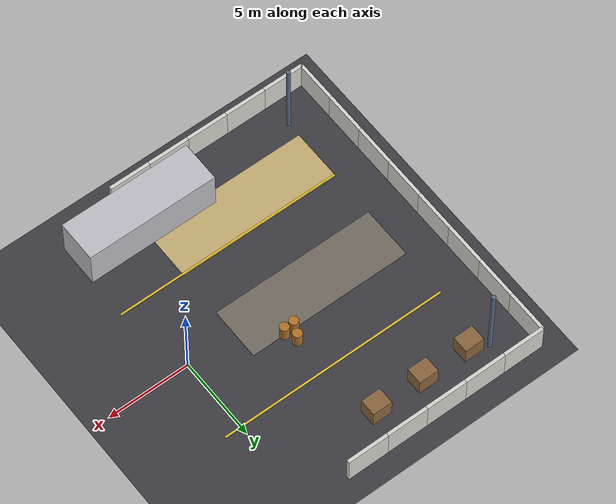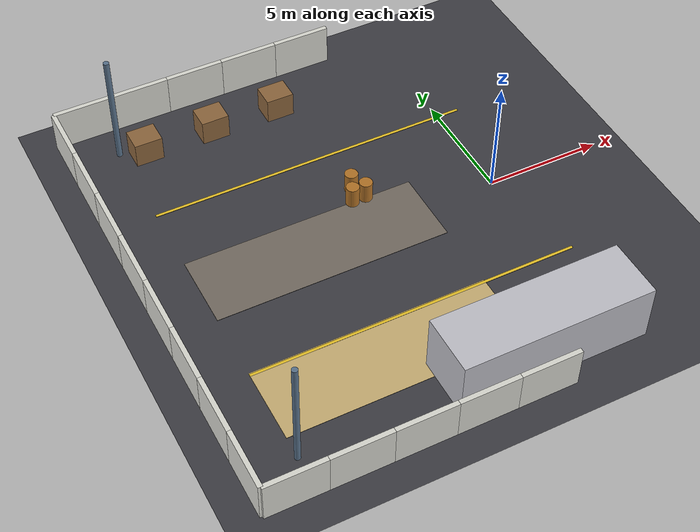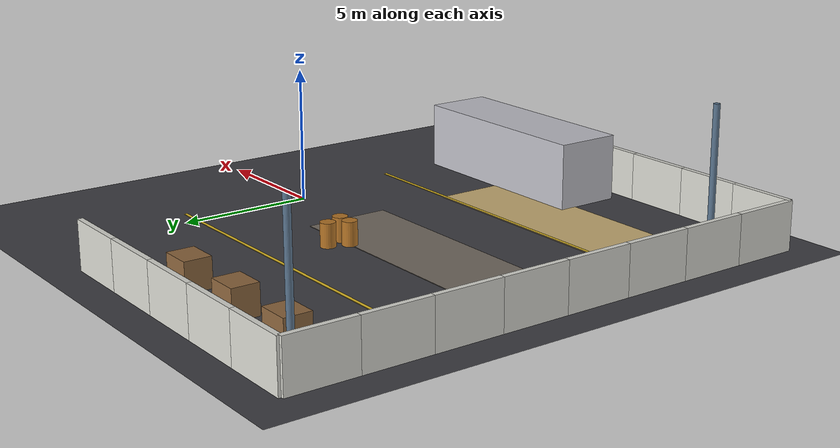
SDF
<sdf version="1.9">
 <world name="default">
  <model name="ground_plane">
   <static>true</static>
   <link name="link">
    <collision name="collision">
     <geometry><plane><normal>0 0 1</normal><size>200 200</size></plane></geometry>
     <surface><friction><ode><mu>0.9</mu><mu2>0.9</mu2></ode></friction></surface>
    </collision>
    <visual name="visual">
     <geometry><plane><normal>0 0 1</normal><size>200 200</size></plane></geometry>
     <material>
      <ambient>0.120 0.120 0.130 1</ambient>
      <diffuse>0.240 0.240 0.260 1</diffuse>
      <specular>0.05 0.05 0.05 1</specular>
      <pbr>
       <metal>
        <albedo_map>materials/textures/asphalt.png</albedo_map>
        <metalness>0.0</metalness>
        <roughness>0.9</roughness>
       </metal>
      </pbr>
     </material>
    </visual>
   </link>
  </model>
  <model name="wall_west_0">
   <static>true</static>
   <pose>-15.10000 -8.83750 0.90000 0 0.000000 0</pose>
   <link name="link">
    <collision name="collision">
     <geometry><box><size>0.20000 2.52500 1.80000</size></box></geometry>
     <surface><friction><ode><mu>1.0</mu><mu2>1.0</mu2></ode></friction></surface>
    </collision>
    <visual name="visual">
     <geometry><box><size>0.20000 2.52500 1.80000</size></box></geometry>
     <material>
      <ambient>0.425 0.425 0.410 1</ambient>
      <diffuse>0.850 0.850 0.820 1</diffuse>
      <specular>0.1 0.1 0.1 1</specular>
      <pbr>
       <metal>
        <albedo_map>materials/textures/painted_wall.png</albedo_map>
        <metalness>0.0</metalness>
        <roughness>0.85</roughness>
       </metal>
      </pbr>
     </material>
    </visual>
   </link>
  </model>
  <model name="wall_west_1">
   <static>true</static>
   <pose>-15.10000 -6.31250 0.90000 0 0.000000 0</pose>
   <link name="link">
    <collision name="collision">
     <geometry><box><size>0.20000 2.52500 1.80000</size></box></geometry>
     <surface><friction><ode><mu>1.0</mu><mu2>1.0</mu2></ode></friction></surface>
    </collision>
    <visual name="visual">
     <geometry><box><size>0.20000 2.52500 1.80000</size></box></geometry>
     <material>
      <ambient>0.425 0.425 0.410 1</ambient>
      <diffuse>0.850 0.850 0.820 1</diffuse>
      <specular>0.1 0.1 0.1 1</specular>
      <pbr>
       <metal>
        <albedo_map>materials/textures/painted_wall.png</albedo_map>
        <metalness>0.0</metalness>
        <roughness>0.85</roughness>
       </metal>
      </pbr>
     </material>
    </visual>
   </link>
  </model>
  <model name="wall_west_2">
   <static>true</static>
   <pose>-15.10000 -3.78750 0.90000 0 0.000000 0</pose>
   <link name="link">
    <collision name="collision">
     <geometry><box><size>0.20000 2.52500 1.80000</size></box></geometry>
     <surface><friction><ode><mu>1.0</mu><mu2>1.0</mu2></ode></friction></surface>
    </collision>
    <visual name="visual">
     <geometry><box><size>0.20000 2.52500 1.80000</size></box></geometry>
     <material>
      <ambient>0.425 0.425 0.410 1</ambient>
      <diffuse>0.850 0.850 0.820 1</diffuse>
      <specular>0.1 0.1 0.1 1</specular>
      <pbr>
       <metal>
        <albedo_map>materials/textures/painted_wall.png</albedo_map>
        <metalness>0.0</metalness>
        <roughness>0.85</roughness>
       </metal>
      </pbr>
     </material>
    </visual>
   </link>
  </model>
  <model name="wall_west_3">
   <static>true</static>
   <pose>-15.10000 -1.26250 0.90000 0 0.000000 0</pose>
   <link name="link">
    <collision name="collision">
     <geometry><box><size>0.20000 2.52500 1.80000</size></box></geometry>
     <surface><friction><ode><mu>1.0</mu><mu2>1.0</mu2></ode></friction></surface>
    </collision>
    <visual name="visual">
     <geometry><box><size>0.20000 2.52500 1.80000</size></box></geometry>
     <material>
      <ambient>0.425 0.425 0.410 1</ambient>
      <diffuse>0.850 0.850 0.820 1</diffuse>
      <specular>0.1 0.1 0.1 1</specular>
      <pbr>
       <metal>
        <albedo_map>materials/textures/painted_wall.png</albedo_map>
        <metalness>0.0</metalness>
        <roughness>0.85</roughness>
       </metal>
      </pbr>
     </material>
    </visual>
   </link>
  </model>
  <model name="wall_west_4">
   <static>true</static>
   <pose>-15.10000 1.26250 0.90000 0 0.000000 0</pose>
   <link name="link">
    <collision name="collision">
     <geometry><box><size>0.20000 2.52500 1.80000</size></box></geometry>
     <surface><friction><ode><mu>1.0</mu><mu2>1.0</mu2></ode></friction></surface>
    </collision>
    <visual name="visual">
     <geometry><box><size>0.20000 2.52500 1.80000</size></box></geometry>
     <material>
      <ambient>0.425 0.425 0.410 1</ambient>
      <diffuse>0.850 0.850 0.820 1</diffuse>
      <specular>0.1 0.1 0.1 1</specular>
      <pbr>
       <metal>
        <albedo_map>materials/textures/painted_wall.png</albedo_map>
        <metalness>0.0</metalness>
        <roughness>0.85</roughness>
       </metal>
      </pbr>
     </material>
    </visual>
   </link>
  </model>
  <model name="wall_west_5">
   <static>true</static>
   <pose>-15.10000 3.78750 0.90000 0 0.000000 0</pose>
   <link name="link">
    <collision name="collision">
     <geometry><box><size>0.20000 2.52500 1.80000</size></box></geometry>
     <surface><friction><ode><mu>1.0</mu><mu2>1.0</mu2></ode></friction></surface>
    </collision>
    <visual name="visual">
     <geometry><box><size>0.20000 2.52500 1.80000</size></box></geometry>
     <material>
      <ambient>0.425 0.425 0.410 1</ambient>
      <diffuse>0.850 0.850 0.820 1</diffuse>
      <specular>0.1 0.1 0.1 1</specular>
      <pbr>
       <metal>
        <albedo_map>materials/textures/painted_wall.png</albedo_map>
        <metalness>0.0</metalness>
        <roughness>0.85</roughness>
       </metal>
      </pbr>
     </material>
    </visual>
   </link>
  </model>
  <model name="wall_west_6">
   <static>true</static>
   <pose>-15.10000 6.31250 0.90000 0 0.000000 0</pose>
   <link name="link">
    <collision name="collision">
     <geometry><box><size>0.20000 2.52500 1.80000</size></box></geometry>
     <surface><friction><ode><mu>1.0</mu><mu2>1.0</mu2></ode></friction></surface>
    </collision>
    <visual name="visual">
     <geometry><box><size>0.20000 2.52500 1.80000</size></box></geometry>
     <material>
      <ambient>0.425 0.425 0.410 1</ambient>
      <diffuse>0.850 0.850 0.820 1</diffuse>
      <specular>0.1 0.1 0.1 1</specular>
      <pbr>
       <metal>
        <albedo_map>materials/textures/painted_wall.png</albedo_map>
        <metalness>0.0</metalness>
        <roughness>0.85</roughness>
       </metal>
      </pbr>
     </material>
    </visual>
   </link>
  </model>
  <model name="wall_west_7">
   <static>true</static>
   <pose>-15.10000 8.83750 0.90000 0 0.000000 0</pose>
   <link name="link">
    <collision name="collision">
     <geometry><box><size>0.20000 2.52500 1.80000</size></box></geometry>
     <surface><friction><ode><mu>1.0</mu><mu2>1.0</mu2></ode></friction></surface>
    </collision>
    <visual name="visual">
     <geometry><box><size>0.20000 2.52500 1.80000</size></box></geometry>
     <material>
      <ambient>0.425 0.425 0.410 1</ambient>
      <diffuse>0.850 0.850 0.820 1</diffuse>
      <specular>0.1 0.1 0.1 1</specular>
      <pbr>
       <metal>
        <albedo_map>materials/textures/painted_wall.png</albedo_map>
        <metalness>0.0</metalness>
        <roughness>0.85</roughness>
       </metal>
      </pbr>
     </material>
    </visual>
   </link>
  </model>
  <model name="wall_north_0">
   <static>true</static>
   <pose>-13.84167 10.10000 0.90000 0 0.000000 0</pose>
   <link name="link">
    <collision name="collision">
     <geometry><box><size>2.51667 0.20000 1.80000</size></box></geometry>
     <surface><friction><ode><mu>1.0</mu><mu2>1.0</mu2></ode></friction></surface>
    </collision>
    <visual name="visual">
     <geometry><box><size>2.51667 0.20000 1.80000</size></box></geometry>
     <material>
      <ambient>0.425 0.425 0.410 1</ambient>
      <diffuse>0.850 0.850 0.820 1</diffuse>
      <specular>0.1 0.1 0.1 1</specular>
      <pbr>
       <metal>
        <albedo_map>materials/textures/painted_wall.png</albedo_map>
        <metalness>0.0</metalness>
        <roughness>0.85</roughness>
       </metal>
      </pbr>
     </material>
    </visual>
   </link>
  </model>
  <model name="wall_north_1">
   <static>true</static>
   <pose>-11.32500 10.10000 0.90000 0 0.000000 0</pose>
   <link name="link">
    <collision name="collision">
     <geometry><box><size>2.51667 0.20000 1.80000</size></box></geometry>
     <surface><friction><ode><mu>1.0</mu><mu2>1.0</mu2></ode></friction></surface>
    </collision>
    <visual name="visual">
     <geometry><box><size>2.51667 0.20000 1.80000</size></box></geometry>
     <material>
      <ambient>0.425 0.425 0.410 1</ambient>
      <diffuse>0.850 0.850 0.820 1</diffuse>
      <specular>0.1 0.1 0.1 1</specular>
      <pbr>
       <metal>
        <albedo_map>materials/textures/painted_wall.png</albedo_map>
        <metalness>0.0</metalness>
        <roughness>0.85</roughness>
       </metal>
      </pbr>
     </material>
    </visual>
   </link>
  </model>
  <model name="wall_north_2">
   <static>true</static>
   <pose>-8.80833 10.10000 0.90000 0 0.000000 0</pose>
   <link name="link">
    <collision name="collision">
     <geometry><box><size>2.51667 0.20000 1.80000</size></box></geometry>
     <surface><friction><ode><mu>1.0</mu><mu2>1.0</mu2></ode></friction></surface>
    </collision>
    <visual name="visual">
     <geometry><box><size>2.51667 0.20000 1.80000</size></box></geometry>
     <material>
      <ambient>0.425 0.425 0.410 1</ambient>
      <diffuse>0.850 0.850 0.820 1</diffuse>
      <specular>0.1 0.1 0.1 1</specular>
      <pbr>
       <metal>
        <albedo_map>materials/textures/painted_wall.png</albedo_map>
        <metalness>0.0</metalness>
        <roughness>0.85</roughness>
       </metal>
      </pbr>
     </material>
    </visual>
   </link>
  </model>
  <model name="wall_north_3">
   <static>true</static>
   <pose>-6.29167 10.10000 0.90000 0 0.000000 0</pose>
   <link name="link">
    <collision name="collision">
     <geometry><box><size>2.51667 0.20000 1.80000</size></box></geometry>
     <surface><friction><ode><mu>1.0</mu><mu2>1.0</mu2></ode></friction></surface>
    </collision>
    <visual name="visual">
     <geometry><box><size>2.51667 0.20000 1.80000</size></box></geometry>
     <material>
      <ambient>0.425 0.425 0.410 1</ambient>
      <diffuse>0.850 0.850 0.820 1</diffuse>
      <specular>0.1 0.1 0.1 1</specular>
      <pbr>
       <metal>
        <albedo_map>materials/textures/painted_wall.png</albedo_map>
        <metalness>0.0</metalness>
        <roughness>0.85</roughness>
       </metal>
      </pbr>
     </material>
    </visual>
   </link>
  </model>
  <model name="wall_north_4">
   <static>true</static>
   <pose>-3.77500 10.10000 0.90000 0 0.000000 0</pose>
   <link name="link">
    <collision name="collision">
     <geometry><box><size>2.51667 0.20000 1.80000</size></box></geometry>
     <surface><friction><ode><mu>1.0</mu><mu2>1.0</mu2></ode></friction></surface>
    </collision>
    <visual name="visual">
     <geometry><box><size>2.51667 0.20000 1.80000</size></box></geometry>
     <material>
      <ambient>0.425 0.425 0.410 1</ambient>
      <diffuse>0.850 0.850 0.820 1</diffuse>
      <specular>0.1 0.1 0.1 1</specular>
      <pbr>
       <metal>
        <albedo_map>materials/textures/painted_wall.png</albedo_map>
        <metalness>0.0</metalness>
        <roughness>0.85</roughness>
       </metal>
      </pbr>
     </material>
    </visual>
   </link>
  </model>
  <model name="wall_south_0">
   <static>true</static>
   <pose>-13.84167 -10.10000 0.90000 0 0.000000 0</pose>
   <link name="link">
    <collision name="collision">
     <geometry><box><size>2.51667 0.20000 1.80000</size></box></geometry>
     <surface><friction><ode><mu>1.0</mu><mu2>1.0</mu2></ode></friction></surface>
    </collision>
    <visual name="visual">
     <geometry><box><size>2.51667 0.20000 1.80000</size></box></geometry>
     <material>
      <ambient>0.425 0.425 0.410 1</ambient>
      <diffuse>0.850 0.850 0.820 1</diffuse>
      <specular>0.1 0.1 0.1 1</specular>
      <pbr>
       <metal>
        <albedo_map>materials/textures/painted_wall.png</albedo_map>
        <metalness>0.0</metalness>
        <roughness>0.85</roughness>
       </metal>
      </pbr>
     </material>
    </visual>
   </link>
  </model>
  <model name="wall_south_1">
   <static>true</static>
   <pose>-11.32500 -10.10000 0.90000 0 0.000000 0</pose>
   <link name="link">
    <collision name="collision">
     <geometry><box><size>2.51667 0.20000 1.80000</size></box></geometry>
     <surface><friction><ode><mu>1.0</mu><mu2>1.0</mu2></ode></friction></surface>
    </collision>
    <visual name="visual">
     <geometry><box><size>2.51667 0.20000 1.80000</size></box></geometry>
     <material>
      <ambient>0.425 0.425 0.410 1</ambient>
      <diffuse>0.850 0.850 0.820 1</diffuse>
      <specular>0.1 0.1 0.1 1</specular>
      <pbr>
       <metal>
        <albedo_map>materials/textures/painted_wall.png</albedo_map>
        <metalness>0.0</metalness>
        <roughness>0.85</roughness>
       </metal>
      </pbr>
     </material>
    </visual>
   </link>
  </model>
  <model name="wall_south_2">
   <static>true</static>
   <pose>-8.80833 -10.10000 0.90000 0 0.000000 0</pose>
   <link name="link">
    <collision name="collision">
     <geometry><box><size>2.51667 0.20000 1.80000</size></box></geometry>
     <surface><friction><ode><mu>1.0</mu><mu2>1.0</mu2></ode></friction></surface>
    </collision>
    <visual name="visual">
     <geometry><box><size>2.51667 0.20000 1.80000</size></box></geometry>
     <material>
      <ambient>0.425 0.425 0.410 1</ambient>
      <diffuse>0.850 0.850 0.820 1</diffuse>
      <specular>0.1 0.1 0.1 1</specular>
      <pbr>
       <metal>
        <albedo_map>materials/textures/painted_wall.png</albedo_map>
        <metalness>0.0</metalness>
        <roughness>0.85</roughness>
       </metal>
      </pbr>
     </material>
    </visual>
   </link>
  </model>
  <model name="wall_south_3">
   <static>true</static>
   <pose>-6.29167 -10.10000 0.90000 0 0.000000 0</pose>
   <link name="link">
    <collision name="collision">
     <geometry><box><size>2.51667 0.20000 1.80000</size></box></geometry>
     <surface><friction><ode><mu>1.0</mu><mu2>1.0</mu2></ode></friction></surface>
    </collision>
    <visual name="visual">
     <geometry><box><size>2.51667 0.20000 1.80000</size></box></geometry>
     <material>
      <ambient>0.425 0.425 0.410 1</ambient>
      <diffuse>0.850 0.850 0.820 1</diffuse>
      <specular>0.1 0.1 0.1 1</specular>
      <pbr>
       <metal>
        <albedo_map>materials/textures/painted_wall.png</albedo_map>
        <metalness>0.0</metalness>
        <roughness>0.85</roughness>
       </metal>
      </pbr>
     </material>
    </visual>
   </link>
  </model>
  <model name="wall_south_4">
   <static>true</static>
   <pose>-3.77500 -10.10000 0.90000 0 0.000000 0</pose>
   <link name="link">
    <collision name="collision">
     <geometry><box><size>2.51667 0.20000 1.80000</size></box></geometry>
     <surface><friction><ode><mu>1.0</mu><mu2>1.0</mu2></ode></friction></surface>
    </collision>
    <visual name="visual">
     <geometry><box><size>2.51667 0.20000 1.80000</size></box></geometry>
     <material>
      <ambient>0.425 0.425 0.410 1</ambient>
      <diffuse>0.850 0.850 0.820 1</diffuse>
      <specular>0.1 0.1 0.1 1</specular>
      <pbr>
       <metal>
        <albedo_map>materials/textures/painted_wall.png</albedo_map>
        <metalness>0.0</metalness>
        <roughness>0.85</roughness>
       </metal>
      </pbr>
     </material>
    </visual>
   </link>
  </model>
  <model name="patch_gravel">
   <static>true</static>
   <pose>-8.00000 0.00000 0.00000 0 0.000000 0</pose>
   <link name="link">
    <collision name="collision">
     <geometry><box><size>10.00000 3.20000 0.02000</size></box></geometry>
     <surface><friction><ode><mu>0.55</mu><mu2>0.55</mu2></ode></friction></surface>
    </collision>
    <visual name="visual">
     <geometry><box><size>10.00000 3.20000 0.02000</size></box></geometry>
     <material>
      <ambient>0.225 0.210 0.190 1</ambient>
      <diffuse>0.450 0.420 0.380 1</diffuse>
      <specular>0.1 0.1 0.1 1</specular>
      <pbr>
       <metal>
        <albedo_map>materials/textures/gravel.png</albedo_map>
        <metalness>0.0</metalness>
        <roughness>0.85</roughness>
       </metal>
      </pbr>
     </material>
    </visual>
   </link>
  </model>
  <model name="patch_sand">
   <static>true</static>
   <pose>-8.00000 -6.00000 0.00000 0 0.000000 0</pose>
   <link name="link">
    <collision name="collision">
     <geometry><box><size>10.00000 3.20000 0.02000</size></box></geometry>
     <surface><friction><ode><mu>0.3</mu><mu2>0.3</mu2></ode></friction></surface>
    </collision>
    <visual name="visual">
     <geometry><box><size>10.00000 3.20000 0.02000</size></box></geometry>
     <material>
      <ambient>0.390 0.340 0.225 1</ambient>
      <diffuse>0.780 0.680 0.450 1</diffuse>
      <specular>0.1 0.1 0.1 1</specular>
      <pbr>
       <metal>
        <albedo_map>materials/textures/sand.png</albedo_map>
        <metalness>0.0</metalness>
        <roughness>0.85</roughness>
       </metal>
      </pbr>
     </material>
    </visual>
   </link>
  </model>
  <model name="lane_paint_north">
   <static>true</static>
   <pose>-6.00000 4.50000 0.00200 0 0.000000 0</pose>
   <link name="link">
    <collision name="collision">
     <geometry><box><size>14.00000 0.12000 0.02000</size></box></geometry>
     <surface><friction><ode><mu>0.9</mu><mu2>0.9</mu2></ode></friction></surface>
    </collision>
    <visual name="visual">
     <geometry><box><size>14.00000 0.12000 0.02000</size></box></geometry>
     <material>
      <ambient>0.450 0.375 0.075 1</ambient>
      <diffuse>0.900 0.750 0.150 1</diffuse>
      <specular>0.1 0.1 0.1 1</specular>
     </material>
    </visual>
   </link>
  </model>
  <model name="lane_paint_south">
   <static>true</static>
   <pose>-6.00000 -4.50000 0.00200 0 0.000000 0</pose>
   <link name="link">
    <collision name="collision">
     <geometry><box><size>14.00000 0.12000 0.02000</size></box></geometry>
     <surface><friction><ode><mu>0.9</mu><mu2>0.9</mu2></ode></friction></surface>
    </collision>
    <visual name="visual">
     <geometry><box><size>14.00000 0.12000 0.02000</size></box></geometry>
     <material>
      <ambient>0.450 0.375 0.075 1</ambient>
      <diffuse>0.900 0.750 0.150 1</diffuse>
      <specular>0.1 0.1 0.1 1</specular>
     </material>
    </visual>
   </link>
  </model>
  <model name="pallet_stack_0">
   <static>true</static>
   <pose>-12.00000 8.00000 0.55000 0 0.000000 0</pose>
   <link name="link">
    <collision name="collision">
     <geometry><box><size>1.20000 1.00000 1.10000</size></box></geometry>
     <surface><friction><ode><mu>1.0</mu><mu2>1.0</mu2></ode></friction></surface>
    </collision>
    <visual name="visual">
     <geometry><box><size>1.20000 1.00000 1.10000</size></box></geometry>
     <material>
      <ambient>0.275 0.200 0.120 1</ambient>
      <diffuse>0.550 0.400 0.240 1</diffuse>
      <specular>0.1 0.1 0.1 1</specular>
      <pbr>
       <metal>
        <albedo_map>materials/textures/crate.png</albedo_map>
        <metalness>0.0</metalness>
        <roughness>0.85</roughness>
       </metal>
      </pbr>
     </material>
    </visual>
   </link>
  </model>
  <model name="pallet_stack_1">
   <static>true</static>
   <pose>-9.00000 8.00000 0.55000 0 0.000000 0</pose>
   <link name="link">
    <collision name="collision">
     <geometry><box><size>1.20000 1.00000 1.10000</size></box></geometry>
     <surface><friction><ode><mu>1.0</mu><mu2>1.0</mu2></ode></friction></surface>
    </collision>
    <visual name="visual">
     <geometry><box><size>1.20000 1.00000 1.10000</size></box></geometry>
     <material>
      <ambient>0.275 0.200 0.120 1</ambient>
      <diffuse>0.550 0.400 0.240 1</diffuse>
      <specular>0.1 0.1 0.1 1</specular>
      <pbr>
       <metal>
        <albedo_map>materials/textures/crate.png</albedo_map>
        <metalness>0.0</metalness>
        <roughness>0.85</roughness>
       </metal>
      </pbr>
     </material>
    </visual>
   </link>
  </model>
  <model name="pallet_stack_2">
   <static>true</static>
   <pose>-6.00000 8.00000 0.55000 0 0.000000 0</pose>
   <link name="link">
    <collision name="collision">
     <geometry><box><size>1.20000 1.00000 1.10000</size></box></geometry>
     <surface><friction><ode><mu>1.0</mu><mu2>1.0</mu2></ode></friction></surface>
    </collision>
    <visual name="visual">
     <geometry><box><size>1.20000 1.00000 1.10000</size></box></geometry>
     <material>
      <ambient>0.275 0.200 0.120 1</ambient>
      <diffuse>0.550 0.400 0.240 1</diffuse>
      <specular>0.1 0.1 0.1 1</specular>
      <pbr>
       <metal>
        <albedo_map>materials/textures/crate.png</albedo_map>
        <metalness>0.0</metalness>
        <roughness>0.85</roughness>
       </metal>
      </pbr>
     </material>
    </visual>
   </link>
  </model>
  <model name="trailer">
   <static>true</static>
   <pose>-3.00000 -8.20000 1.25000 0 0.000000 0</pose>
   <link name="link">
    <collision name="collision">
     <geometry><box><size>8.00000 2.50000 2.50000</size></box></geometry>
     <surface><friction><ode><mu>1.0</mu><mu2>1.0</mu2></ode></friction></surface>
    </collision>
    <visual name="visual">
     <geometry><box><size>8.00000 2.50000 2.50000</size></box></geometry>
     <material>
      <ambient>0.375 0.375 0.390 1</ambient>
      <diffuse>0.750 0.750 0.780 1</diffuse>
      <specular>0.1 0.1 0.1 1</specular>
     </material>
    </visual>
   </link>
  </model>
  <model name="light_pole_nw">
   <static>true</static>
   <pose>-13.00000 8.50000 2.50000 0 0 0</pose>
   <link name="link">
    <collision name="collision">
     <geometry><cylinder><radius>0.12</radius><length>5.0</length></cylinder></geometry>
     <surface><friction><ode><mu>1.0</mu><mu2>1.0</mu2></ode></friction></surface>
    </collision>
    <visual name="visual">
     <geometry><cylinder><radius>0.12</radius><length>5.0</length></cylinder></geometry>
     <material>
      <ambient>0.175 0.225 0.275 1</ambient>
      <diffuse>0.350 0.450 0.550 1</diffuse>
      <specular>0.1 0.1 0.1 1</specular>
      <pbr>
       <metal>
        <albedo_map>materials/textures/steel.png</albedo_map>
        <metalness>0.0</metalness>
        <roughness>0.85</roughness>
       </metal>
      </pbr>
     </material>
    </visual>
   </link>
  </model>
  <model name="light_pole_sw">
   <static>true</static>
   <pose>-13.00000 -8.50000 2.50000 0 0 0</pose>
   <link name="link">
    <collision name="collision">
     <geometry><cylinder><radius>0.12</radius><length>5.0</length></cylinder></geometry>
     <surface><friction><ode><mu>1.0</mu><mu2>1.0</mu2></ode></friction></surface>
    </collision>
    <visual name="visual">
     <geometry><cylinder><radius>0.12</radius><length>5.0</length></cylinder></geometry>
     <material>
      <ambient>0.175 0.225 0.275 1</ambient>
      <diffuse>0.350 0.450 0.550 1</diffuse>
      <specular>0.1 0.1 0.1 1</specular>
      <pbr>
       <metal>
        <albedo_map>materials/textures/steel.png</albedo_map>
        <metalness>0.0</metalness>
        <roughness>0.85</roughness>
       </metal>
      </pbr>
     </material>
    </visual>
   </link>
  </model>
  <model name="drum_a">
   <static>true</static>
   <pose>-5.00000 1.60000 0.45000 0 0 0</pose>
   <link name="link">
    <collision name="collision">
     <geometry><cylinder><radius>0.28</radius><length>0.9</length></cylinder></geometry>
     <surface><friction><ode><mu>1.0</mu><mu2>1.0</mu2></ode></friction></surface>
    </collision>
    <visual name="visual">
     <geometry><cylinder><radius>0.28</radius><length>0.9</length></cylinder></geometry>
     <material>
      <ambient>0.350 0.225 0.075 1</ambient>
      <diffuse>0.700 0.450 0.150 1</diffuse>
      <specular>0.1 0.1 0.1 1</specular>
      <pbr>
       <metal>
        <albedo_map>materials/textures/steel.png</albedo_map>
        <metalness>0.0</metalness>
        <roughness>0.85</roughness>
       </metal>
      </pbr>
     </material>
    </visual>
   </link>
  </model>
  <model name="drum_b">
   <static>true</static>
   <pose>-5.60000 1.60000 0.45000 0 0 0</pose>
   <link name="link">
    <collision name="collision">
     <geometry><cylinder><radius>0.28</radius><length>0.9</length></cylinder></geometry>
     <surface><friction><ode><mu>1.0</mu><mu2>1.0</mu2></ode></friction></surface>
    </collision>
    <visual name="visual">
     <geometry><cylinder><radius>0.28</radius><length>0.9</length></cylinder></geometry>
     <material>
      <ambient>0.350 0.225 0.075 1</ambient>
      <diffuse>0.700 0.450 0.150 1</diffuse>
      <specular>0.1 0.1 0.1 1</specular>
      <pbr>
       <metal>
        <albedo_map>materials/textures/steel.png</albedo_map>
        <metalness>0.0</metalness>
        <roughness>0.85</roughness>
       </metal>
      </pbr>
     </material>
    </visual>
   </link>
  </model>
  <model name="drum_c">
   <static>true</static>
   <pose>-5.30000 2.30000 0.45000 0 0 0</pose>
   <link name="link">
    <collision name="collision">
     <geometry><cylinder><radius>0.28</radius><length>0.9</length></cylinder></geometry>
     <surface><friction><ode><mu>1.0</mu><mu2>1.0</mu2></ode></friction></surface>
    </collision>
    <visual name="visual">
     <geometry><cylinder><radius>0.28</radius><length>0.9</length></cylinder></geometry>
     <material>
      <ambient>0.350 0.225 0.075 1</ambient>
      <diffuse>0.700 0.450 0.150 1</diffuse>
      <specular>0.1 0.1 0.1 1</specular>
      <pbr>
       <metal>
        <albedo_map>materials/textures/steel.png</albedo_map>
        <metalness>0.0</metalness>
        <roughness>0.85</roughness>
       </metal>
      </pbr>
     </material>
    </visual>
   </link>
  </model>
 </world>
</sdf>
